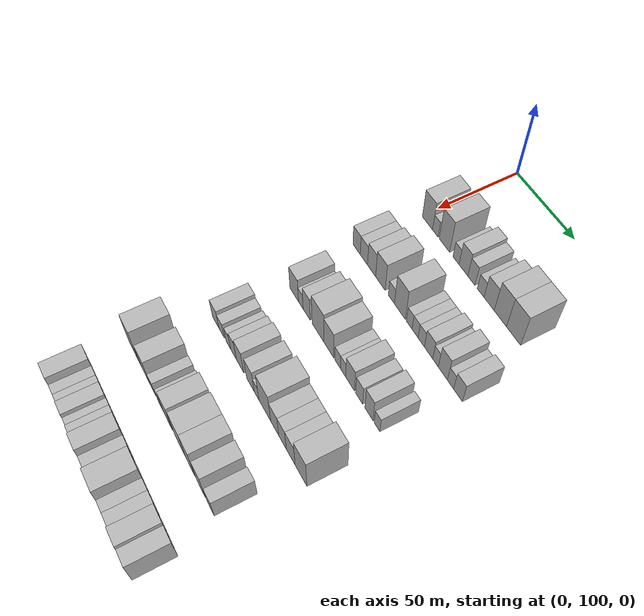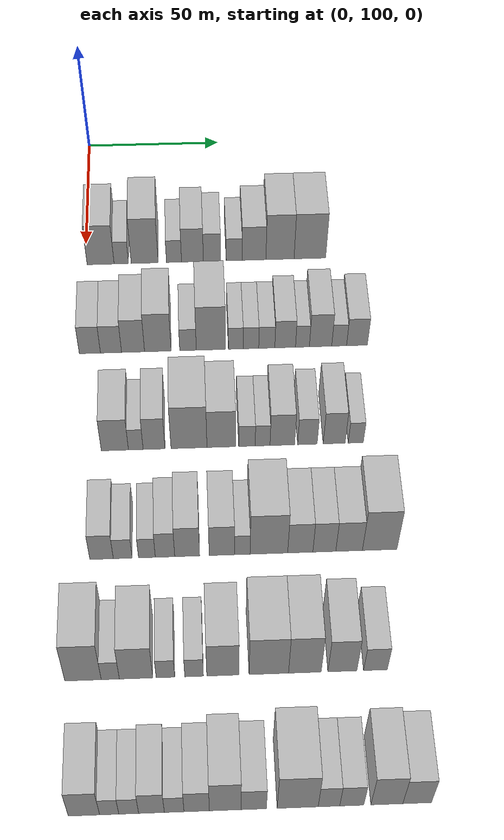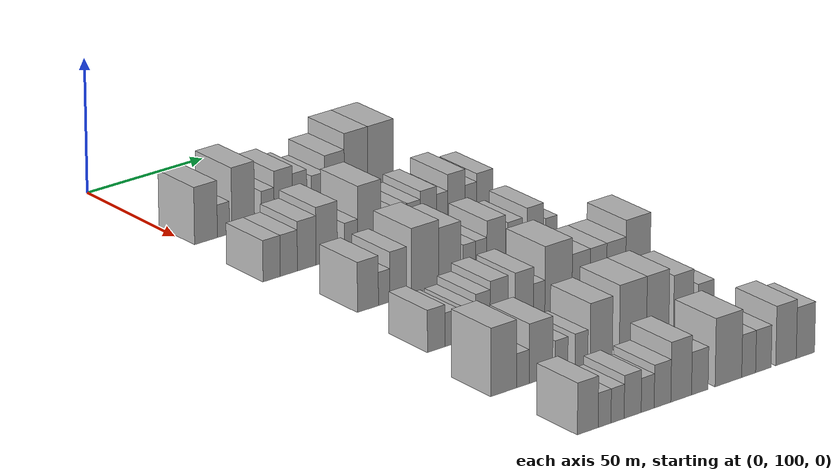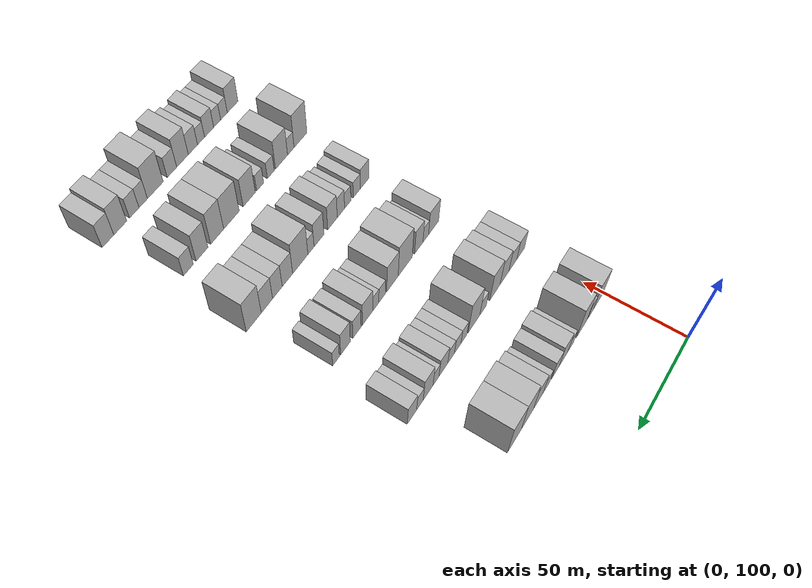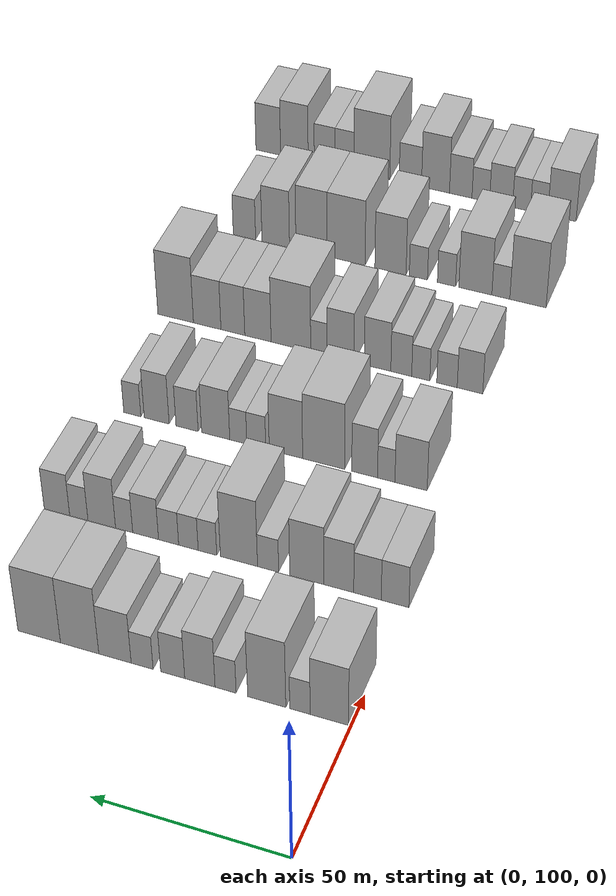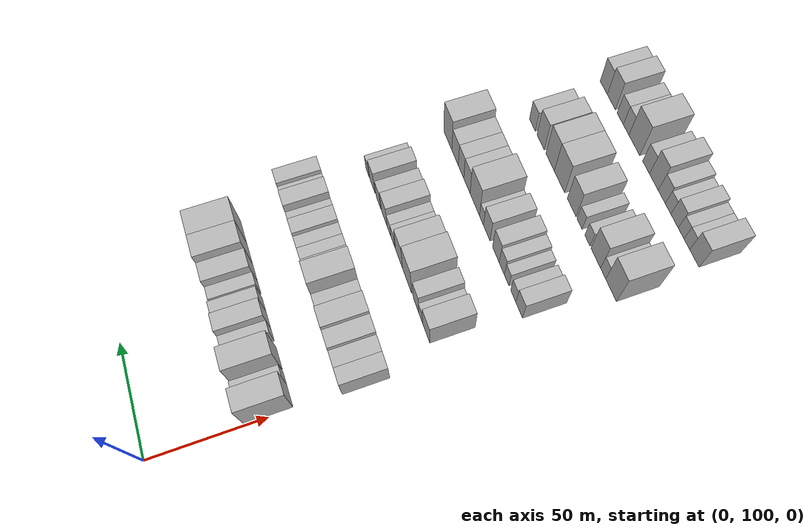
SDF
<sdf version="1.6">
 <world name="default">
  <model name="building_86">
   <static>1</static>
   <pose>50.0000 105.5415 0 0.000000 0.000000 0.000000</pose>
   <link name="link">
    <pose>0 0 10.50 0 0 0</pose>
    <collision name="collision"><geometry><box><size>20.0000 9.7715 21.0000</size></box></geometry></collision>
    <visual name="visual">
     <cast_shadows>0</cast_shadows>
     <geometry><box><size>20.0000 9.7715 21.0000</size></box></geometry>
     <material>
      <script>
       <uri>model://HANNAS_wall/materials/scripts</uri>
       <uri>model://HANNAS_wall/materials/textures</uri>
       <name>vrc/HANNAS_wall</name>
      </script>
     </material>
    </visual>
   </link>
  </model>
  <model name="building_87">
   <static>1</static>
   <pose>50.0000 113.0365 0 0.000000 0.000000 0.000000</pose>
   <link name="link">
    <pose>0 0 6.00 0 0 0</pose>
    <collision name="collision"><geometry><box><size>20.0000 5.2187 12.0000</size></box></geometry></collision>
    <visual name="visual">
     <cast_shadows>0</cast_shadows>
     <geometry><box><size>20.0000 5.2187 12.0000</size></box></geometry>
     <material>
      <script>
       <uri>model://HANNAS_wall/materials/scripts</uri>
       <uri>model://HANNAS_wall/materials/textures</uri>
       <name>vrc/HANNAS_wall</name>
      </script>
     </material>
    </visual>
   </link>
  </model>
  <model name="building_88">
   <static>1</static>
   <pose>50.0000 121.5608 0 0.000000 0.000000 0.000000</pose>
   <link name="link">
    <pose>0 0 12.00 0 0 0</pose>
    <collision name="collision"><geometry><box><size>20.0000 9.8299 24.0000</size></box></geometry></collision>
    <visual name="visual">
     <cast_shadows>0</cast_shadows>
     <geometry><box><size>20.0000 9.8299 24.0000</size></box></geometry>
     <material>
      <script>
       <uri>model://HANNAS_wall/materials/scripts</uri>
       <uri>model://HANNAS_wall/materials/textures</uri>
       <name>vrc/HANNAS_wall</name>
      </script>
     </material>
    </visual>
   </link>
  </model>
  <model name="building_89">
   <static>1</static>
   <pose>50.0000 132.2190 0 0.000000 0.000000 0.000000</pose>
   <link name="link">
    <pose>0 0 6.00 0 0 0</pose>
    <collision name="collision"><geometry><box><size>20.0000 5.4866 12.0000</size></box></geometry></collision>
    <visual name="visual">
     <cast_shadows>0</cast_shadows>
     <geometry><box><size>20.0000 5.4866 12.0000</size></box></geometry>
     <material>
      <script>
       <uri>model://HANNAS_wall/materials/scripts</uri>
       <uri>model://HANNAS_wall/materials/textures</uri>
       <name>vrc/HANNAS_wall</name>
      </script>
     </material>
    </visual>
   </link>
  </model>
  <model name="building_90">
   <static>1</static>
   <pose>50.0000 138.9296 0 0.000000 0.000000 0.000000</pose>
   <link name="link">
    <pose>0 0 9.00 0 0 0</pose>
    <collision name="collision"><geometry><box><size>20.0000 7.9345 18.0000</size></box></geometry></collision>
    <visual name="visual">
     <cast_shadows>0</cast_shadows>
     <geometry><box><size>20.0000 7.9345 18.0000</size></box></geometry>
     <material>
      <script>
       <uri>model://HANNAS_wall/materials/scripts</uri>
       <uri>model://HANNAS_wall/materials/textures</uri>
       <name>vrc/HANNAS_wall</name>
      </script>
     </material>
    </visual>
   </link>
  </model>
  <model name="building_91">
   <static>1</static>
   <pose>50.0000 146.0632 0 0.000000 0.000000 0.000000</pose>
   <link name="link">
    <pose>0 0 7.50 0 0 0</pose>
    <collision name="collision"><geometry><box><size>20.0000 6.3328 15.0000</size></box></geometry></collision>
    <visual name="visual">
     <cast_shadows>0</cast_shadows>
     <geometry><box><size>20.0000 6.3328 15.0000</size></box></geometry>
     <material>
      <script>
       <uri>model://HANNAS_wall/materials/scripts</uri>
       <uri>model://HANNAS_wall/materials/textures</uri>
       <name>vrc/HANNAS_wall</name>
      </script>
     </material>
    </visual>
   </link>
  </model>
  <model name="building_92">
   <static>1</static>
   <pose>50.0000 154.1376 0 0.000000 0.000000 0.000000</pose>
   <link name="link">
    <pose>0 0 6.00 0 0 0</pose>
    <collision name="collision"><geometry><box><size>20.0000 5.8160 12.0000</size></box></geometry></collision>
    <visual name="visual">
     <cast_shadows>0</cast_shadows>
     <geometry><box><size>20.0000 5.8160 12.0000</size></box></geometry>
     <material>
      <script>
       <uri>model://HANNAS_wall/materials/scripts</uri>
       <uri>model://HANNAS_wall/materials/textures</uri>
       <name>vrc/HANNAS_wall</name>
      </script>
     </material>
    </visual>
   </link>
  </model>
  <model name="building_93">
   <static>1</static>
   <pose>50.0000 161.3709 0 0.000000 0.000000 0.000000</pose>
   <link name="link">
    <pose>0 0 9.00 0 0 0</pose>
    <collision name="collision"><geometry><box><size>20.0000 8.6505 18.0000</size></box></geometry></collision>
    <visual name="visual">
     <cast_shadows>0</cast_shadows>
     <geometry><box><size>20.0000 8.6505 18.0000</size></box></geometry>
     <material>
      <script>
       <uri>model://HANNAS_wall/materials/scripts</uri>
       <uri>model://HANNAS_wall/materials/textures</uri>
       <name>vrc/HANNAS_wall</name>
      </script>
     </material>
    </visual>
   </link>
  </model>
  <model name="building_94">
   <static>1</static>
   <pose>50.0000 170.8442 0 0.000000 0.000000 0.000000</pose>
   <link name="link">
    <pose>0 0 12.00 0 0 0</pose>
    <collision name="collision"><geometry><box><size>20.0000 10.2962 24.0000</size></box></geometry></collision>
    <visual name="visual">
     <cast_shadows>0</cast_shadows>
     <geometry><box><size>20.0000 10.2962 24.0000</size></box></geometry>
     <material>
      <script>
       <uri>model://HANNAS_wall/materials/scripts</uri>
       <uri>model://HANNAS_wall/materials/textures</uri>
       <name>vrc/HANNAS_wall</name>
      </script>
     </material>
    </visual>
   </link>
  </model>
  <model name="building_95">
   <static>1</static>
   <pose>50.0000 181.7622 0 0.000000 0.000000 0.000000</pose>
   <link name="link">
    <pose>0 0 12.00 0 0 0</pose>
    <collision name="collision"><geometry><box><size>20.0000 11.5397 24.0000</size></box></geometry></collision>
    <visual name="visual">
     <cast_shadows>0</cast_shadows>
     <geometry><box><size>20.0000 11.5397 24.0000</size></box></geometry>
     <material>
      <script>
       <uri>model://HANNAS_wall/materials/scripts</uri>
       <uri>model://HANNAS_wall/materials/textures</uri>
       <name>vrc/HANNAS_wall</name>
      </script>
     </material>
    </visual>
   </link>
  </model>
  <model name="building_205">
   <static>1</static>
   <pose>90.0000 102.5580 0 0.000000 0.000000 0.000000</pose>
   <link name="link">
    <pose>0 0 7.50 0 0 0</pose>
    <collision name="collision"><geometry><box><size>20.0000 7.3228 15.0000</size></box></geometry></collision>
    <visual name="visual">
     <cast_shadows>0</cast_shadows>
     <geometry><box><size>20.0000 7.3228 15.0000</size></box></geometry>
     <material>
      <script>
       <uri>model://HANNAS_wall/materials/scripts</uri>
       <uri>model://HANNAS_wall/materials/textures</uri>
       <name>vrc/HANNAS_wall</name>
      </script>
     </material>
    </visual>
   </link>
  </model>
  <model name="building_206">
   <static>1</static>
   <pose>90.0000 109.8729 0 0.000000 0.000000 0.000000</pose>
   <link name="link">
    <pose>0 0 7.50 0 0 0</pose>
    <collision name="collision"><geometry><box><size>20.0000 7.3071 15.0000</size></box></geometry></collision>
    <visual name="visual">
     <cast_shadows>0</cast_shadows>
     <geometry><box><size>20.0000 7.3071 15.0000</size></box></geometry>
     <material>
      <script>
       <uri>model://HANNAS_wall/materials/scripts</uri>
       <uri>model://HANNAS_wall/materials/textures</uri>
       <name>vrc/HANNAS_wall</name>
      </script>
     </material>
    </visual>
   </link>
  </model>
  <model name="building_207">
   <static>1</static>
   <pose>90.0000 117.5185 0 0.000000 0.000000 0.000000</pose>
   <link name="link">
    <pose>0 0 9.00 0 0 0</pose>
    <collision name="collision"><geometry><box><size>20.0000 7.9840 18.0000</size></box></geometry></collision>
    <visual name="visual">
     <cast_shadows>0</cast_shadows>
     <geometry><box><size>20.0000 7.9840 18.0000</size></box></geometry>
     <material>
      <script>
       <uri>model://HANNAS_wall/materials/scripts</uri>
       <uri>model://HANNAS_wall/materials/textures</uri>
       <name>vrc/HANNAS_wall</name>
      </script>
     </material>
    </visual>
   </link>
  </model>
  <model name="building_208">
   <static>1</static>
   <pose>90.0000 126.1099 0 0.000000 0.000000 0.000000</pose>
   <link name="link">
    <pose>0 0 10.50 0 0 0</pose>
    <collision name="collision"><geometry><box><size>20.0000 9.1990 21.0000</size></box></geometry></collision>
    <visual name="visual">
     <cast_shadows>0</cast_shadows>
     <geometry><box><size>20.0000 9.1990 21.0000</size></box></geometry>
     <material>
      <script>
       <uri>model://HANNAS_wall/materials/scripts</uri>
       <uri>model://HANNAS_wall/materials/textures</uri>
       <name>vrc/HANNAS_wall</name>
      </script>
     </material>
    </visual>
   </link>
  </model>
  <model name="building_209">
   <static>1</static>
   <pose>90.0000 136.5856 0 0.000000 0.000000 0.000000</pose>
   <link name="link">
    <pose>0 0 6.00 0 0 0</pose>
    <collision name="collision"><geometry><box><size>20.0000 5.7523 12.0000</size></box></geometry></collision>
    <visual name="visual">
     <cast_shadows>0</cast_shadows>
     <geometry><box><size>20.0000 5.7523 12.0000</size></box></geometry>
     <material>
      <script>
       <uri>model://HANNAS_wall/materials/scripts</uri>
       <uri>model://HANNAS_wall/materials/textures</uri>
       <name>vrc/HANNAS_wall</name>
      </script>
     </material>
    </visual>
   </link>
  </model>
  <model name="building_210">
   <static>1</static>
   <pose>90.0000 144.5418 0 0.000000 0.000000 0.000000</pose>
   <link name="link">
    <pose>0 0 12.00 0 0 0</pose>
    <collision name="collision"><geometry><box><size>20.0000 10.1601 24.0000</size></box></geometry></collision>
    <visual name="visual">
     <cast_shadows>0</cast_shadows>
     <geometry><box><size>20.0000 10.1601 24.0000</size></box></geometry>
     <material>
      <script>
       <uri>model://HANNAS_wall/materials/scripts</uri>
       <uri>model://HANNAS_wall/materials/textures</uri>
       <name>vrc/HANNAS_wall</name>
      </script>
     </material>
    </visual>
   </link>
  </model>
  <model name="building_211">
   <static>1</static>
   <pose>90.0000 153.1851 0 0.000000 0.000000 0.000000</pose>
   <link name="link">
    <pose>0 0 6.00 0 0 0</pose>
    <collision name="collision"><geometry><box><size>20.0000 5.1266 12.0000</size></box></geometry></collision>
    <visual name="visual">
     <cast_shadows>0</cast_shadows>
     <geometry><box><size>20.0000 5.1266 12.0000</size></box></geometry>
     <material>
      <script>
       <uri>model://HANNAS_wall/materials/scripts</uri>
       <uri>model://HANNAS_wall/materials/textures</uri>
       <name>vrc/HANNAS_wall</name>
      </script>
     </material>
    </visual>
   </link>
  </model>
  <model name="building_212">
   <static>1</static>
   <pose>90.0000 158.4520 0 0.000000 0.000000 0.000000</pose>
   <link name="link">
    <pose>0 0 6.00 0 0 0</pose>
    <collision name="collision"><geometry><box><size>20.0000 5.4071 12.0000</size></box></geometry></collision>
    <visual name="visual">
     <cast_shadows>0</cast_shadows>
     <geometry><box><size>20.0000 5.4071 12.0000</size></box></geometry>
     <material>
      <script>
       <uri>model://HANNAS_wall/materials/scripts</uri>
       <uri>model://HANNAS_wall/materials/textures</uri>
       <name>vrc/HANNAS_wall</name>
      </script>
     </material>
    </visual>
   </link>
  </model>
  <model name="building_213">
   <static>1</static>
   <pose>90.0000 163.9568 0 0.000000 0.000000 0.000000</pose>
   <link name="link">
    <pose>0 0 6.00 0 0 0</pose>
    <collision name="collision"><geometry><box><size>20.0000 5.6026 12.0000</size></box></geometry></collision>
    <visual name="visual">
     <cast_shadows>0</cast_shadows>
     <geometry><box><size>20.0000 5.6026 12.0000</size></box></geometry>
     <material>
      <script>
       <uri>model://HANNAS_wall/materials/scripts</uri>
       <uri>model://HANNAS_wall/materials/textures</uri>
       <name>vrc/HANNAS_wall</name>
      </script>
     </material>
    </visual>
   </link>
  </model>
  <model name="building_214">
   <static>1</static>
   <pose>90.0000 170.3653 0 0.000000 0.000000 0.000000</pose>
   <link name="link">
    <pose>0 0 7.50 0 0 0</pose>
    <collision name="collision"><geometry><box><size>20.0000 7.2143 15.0000</size></box></geometry></collision>
    <visual name="visual">
     <cast_shadows>0</cast_shadows>
     <geometry><box><size>20.0000 7.2143 15.0000</size></box></geometry>
     <material>
      <script>
       <uri>model://HANNAS_wall/materials/scripts</uri>
       <uri>model://HANNAS_wall/materials/textures</uri>
       <name>vrc/HANNAS_wall</name>
      </script>
     </material>
    </visual>
   </link>
  </model>
  <model name="building_215">
   <static>1</static>
   <pose>90.0000 176.3844 0 0.000000 0.000000 0.000000</pose>
   <link name="link">
    <pose>0 0 6.00 0 0 0</pose>
    <collision name="collision"><geometry><box><size>20.0000 4.8239 12.0000</size></box></geometry></collision>
    <visual name="visual">
     <cast_shadows>0</cast_shadows>
     <geometry><box><size>20.0000 4.8239 12.0000</size></box></geometry>
     <material>
      <script>
       <uri>model://HANNAS_wall/materials/scripts</uri>
       <uri>model://HANNAS_wall/materials/textures</uri>
       <name>vrc/HANNAS_wall</name>
      </script>
     </material>
    </visual>
   </link>
  </model>
  <model name="building_216">
   <static>1</static>
   <pose>90.0000 182.6965 0 0.000000 0.000000 0.000000</pose>
   <link name="link">
    <pose>0 0 9.00 0 0 0</pose>
    <collision name="collision"><geometry><box><size>20.0000 7.8003 18.0000</size></box></geometry></collision>
    <visual name="visual">
     <cast_shadows>0</cast_shadows>
     <geometry><box><size>20.0000 7.8003 18.0000</size></box></geometry>
     <material>
      <script>
       <uri>model://HANNAS_wall/materials/scripts</uri>
       <uri>model://HANNAS_wall/materials/textures</uri>
       <name>vrc/HANNAS_wall</name>
      </script>
     </material>
    </visual>
   </link>
  </model>
  <model name="building_217">
   <static>1</static>
   <pose>90.0000 189.1905 0 0.000000 0.000000 0.000000</pose>
   <link name="link">
    <pose>0 0 6.00 0 0 0</pose>
    <collision name="collision"><geometry><box><size>20.0000 5.1875 12.0000</size></box></geometry></collision>
    <visual name="visual">
     <cast_shadows>0</cast_shadows>
     <geometry><box><size>20.0000 5.1875 12.0000</size></box></geometry>
     <material>
      <script>
       <uri>model://HANNAS_wall/materials/scripts</uri>
       <uri>model://HANNAS_wall/materials/textures</uri>
       <name>vrc/HANNAS_wall</name>
      </script>
     </material>
    </visual>
   </link>
  </model>
  <model name="building_218">
   <static>1</static>
   <pose>90.0000 195.4128 0 0.000000 0.000000 0.000000</pose>
   <link name="link">
    <pose>0 0 7.50 0 0 0</pose>
    <collision name="collision"><geometry><box><size>20.0000 7.2571 15.0000</size></box></geometry></collision>
    <visual name="visual">
     <cast_shadows>0</cast_shadows>
     <geometry><box><size>20.0000 7.2571 15.0000</size></box></geometry>
     <material>
      <script>
       <uri>model://HANNAS_wall/materials/scripts</uri>
       <uri>model://HANNAS_wall/materials/textures</uri>
       <name>vrc/HANNAS_wall</name>
      </script>
     </material>
    </visual>
   </link>
  </model>
  <model name="building_345">
   <static>1</static>
   <pose>130.0000 111.7218 0 0.000000 0.000000 0.000000</pose>
   <link name="link">
    <pose>0 0 9.00 0 0 0</pose>
    <collision name="collision"><geometry><box><size>20.0000 8.9261 18.0000</size></box></geometry></collision>
    <visual name="visual">
     <cast_shadows>0</cast_shadows>
     <geometry><box><size>20.0000 8.9261 18.0000</size></box></geometry>
     <material>
      <script>
       <uri>model://HANNAS_wall/materials/scripts</uri>
       <uri>model://HANNAS_wall/materials/textures</uri>
       <name>vrc/HANNAS_wall</name>
      </script>
     </material>
    </visual>
   </link>
  </model>
  <model name="building_346">
   <static>1</static>
   <pose>130.0000 118.6099 0 0.000000 0.000000 0.000000</pose>
   <link name="link">
    <pose>0 0 6.00 0 0 0</pose>
    <collision name="collision"><geometry><box><size>20.0000 4.8501 12.0000</size></box></geometry></collision>
    <visual name="visual">
     <cast_shadows>0</cast_shadows>
     <geometry><box><size>20.0000 4.8501 12.0000</size></box></geometry>
     <material>
      <script>
       <uri>model://HANNAS_wall/materials/scripts</uri>
       <uri>model://HANNAS_wall/materials/textures</uri>
       <name>vrc/HANNAS_wall</name>
      </script>
     </material>
    </visual>
   </link>
  </model>
  <model name="building_347">
   <static>1</static>
   <pose>130.0000 124.6381 0 0.000000 0.000000 0.000000</pose>
   <link name="link">
    <pose>0 0 9.00 0 0 0</pose>
    <collision name="collision"><geometry><box><size>20.0000 7.2063 18.0000</size></box></geometry></collision>
    <visual name="visual">
     <cast_shadows>0</cast_shadows>
     <geometry><box><size>20.0000 7.2063 18.0000</size></box></geometry>
     <material>
      <script>
       <uri>model://HANNAS_wall/materials/scripts</uri>
       <uri>model://HANNAS_wall/materials/textures</uri>
       <name>vrc/HANNAS_wall</name>
      </script>
     </material>
    </visual>
   </link>
  </model>
  <model name="building_348">
   <static>1</static>
   <pose>130.0000 136.1769 0 0.000000 0.000000 0.000000</pose>
   <link name="link">
    <pose>0 0 12.00 0 0 0</pose>
    <collision name="collision"><geometry><box><size>20.0000 11.8715 24.0000</size></box></geometry></collision>
    <visual name="visual">
     <cast_shadows>0</cast_shadows>
     <geometry><box><size>20.0000 11.8715 24.0000</size></box></geometry>
     <material>
      <script>
       <uri>model://HANNAS_wall/materials/scripts</uri>
       <uri>model://HANNAS_wall/materials/textures</uri>
       <name>vrc/HANNAS_wall</name>
      </script>
     </material>
    </visual>
   </link>
  </model>
  <model name="building_349">
   <static>1</static>
   <pose>130.0000 146.8684 0 0.000000 0.000000 0.000000</pose>
   <link name="link">
    <pose>0 0 10.50 0 0 0</pose>
    <collision name="collision"><geometry><box><size>20.0000 9.5114 21.0000</size></box></geometry></collision>
    <visual name="visual">
     <cast_shadows>0</cast_shadows>
     <geometry><box><size>20.0000 9.5114 21.0000</size></box></geometry>
     <material>
      <script>
       <uri>model://HANNAS_wall/materials/scripts</uri>
       <uri>model://HANNAS_wall/materials/textures</uri>
       <name>vrc/HANNAS_wall</name>
      </script>
     </material>
    </visual>
   </link>
  </model>
  <model name="building_350">
   <static>1</static>
   <pose>130.0000 155.3452 0 0.000000 0.000000 0.000000</pose>
   <link name="link">
    <pose>0 0 6.00 0 0 0</pose>
    <collision name="collision"><geometry><box><size>20.0000 5.4422 12.0000</size></box></geometry></collision>
    <visual name="visual">
     <cast_shadows>0</cast_shadows>
     <geometry><box><size>20.0000 5.4422 12.0000</size></box></geometry>
     <material>
      <script>
       <uri>model://HANNAS_wall/materials/scripts</uri>
       <uri>model://HANNAS_wall/materials/textures</uri>
       <name>vrc/HANNAS_wall</name>
      </script>
     </material>
    </visual>
   </link>
  </model>
  <model name="building_351">
   <static>1</static>
   <pose>130.0000 160.5238 0 0.000000 0.000000 0.000000</pose>
   <link name="link">
    <pose>0 0 6.00 0 0 0</pose>
    <collision name="collision"><geometry><box><size>20.0000 4.9150 12.0000</size></box></geometry></collision>
    <visual name="visual">
     <cast_shadows>0</cast_shadows>
     <geometry><box><size>20.0000 4.9150 12.0000</size></box></geometry>
     <material>
      <script>
       <uri>model://HANNAS_wall/materials/scripts</uri>
       <uri>model://HANNAS_wall/materials/textures</uri>
       <name>vrc/HANNAS_wall</name>
      </script>
     </material>
    </visual>
   </link>
  </model>
  <model name="building_352">
   <static>1</static>
   <pose>130.0000 167.0611 0 0.000000 0.000000 0.000000</pose>
   <link name="link">
    <pose>0 0 9.00 0 0 0</pose>
    <collision name="collision"><geometry><box><size>20.0000 8.1597 18.0000</size></box></geometry></collision>
    <visual name="visual">
     <cast_shadows>0</cast_shadows>
     <geometry><box><size>20.0000 8.1597 18.0000</size></box></geometry>
     <material>
      <script>
       <uri>model://HANNAS_wall/materials/scripts</uri>
       <uri>model://HANNAS_wall/materials/textures</uri>
       <name>vrc/HANNAS_wall</name>
      </script>
     </material>
    </visual>
   </link>
  </model>
  <model name="building_353">
   <static>1</static>
   <pose>130.0000 175.3699 0 0.000000 0.000000 0.000000</pose>
   <link name="link">
    <pose>0 0 7.50 0 0 0</pose>
    <collision name="collision"><geometry><box><size>20.0000 6.4578 15.0000</size></box></geometry></collision>
    <visual name="visual">
     <cast_shadows>0</cast_shadows>
     <geometry><box><size>20.0000 6.4578 15.0000</size></box></geometry>
     <material>
      <script>
       <uri>model://HANNAS_wall/materials/scripts</uri>
       <uri>model://HANNAS_wall/materials/textures</uri>
       <name>vrc/HANNAS_wall</name>
      </script>
     </material>
    </visual>
   </link>
  </model>
  <model name="building_354">
   <static>1</static>
   <pose>130.0000 184.2520 0 0.000000 0.000000 0.000000</pose>
   <link name="link">
    <pose>0 0 9.00 0 0 0</pose>
    <collision name="collision"><geometry><box><size>20.0000 7.3066 18.0000</size></box></geometry></collision>
    <visual name="visual">
     <cast_shadows>0</cast_shadows>
     <geometry><box><size>20.0000 7.3066 18.0000</size></box></geometry>
     <material>
      <script>
       <uri>model://HANNAS_wall/materials/scripts</uri>
       <uri>model://HANNAS_wall/materials/textures</uri>
       <name>vrc/HANNAS_wall</name>
      </script>
     </material>
    </visual>
   </link>
  </model>
  <model name="building_355">
   <static>1</static>
   <pose>130.0000 191.4180 0 0.000000 0.000000 0.000000</pose>
   <link name="link">
    <pose>0 0 6.00 0 0 0</pose>
    <collision name="collision"><geometry><box><size>20.0000 5.0254 12.0000</size></box></geometry></collision>
    <visual name="visual">
     <cast_shadows>0</cast_shadows>
     <geometry><box><size>20.0000 5.0254 12.0000</size></box></geometry>
     <material>
      <script>
       <uri>model://HANNAS_wall/materials/scripts</uri>
       <uri>model://HANNAS_wall/materials/textures</uri>
       <name>vrc/HANNAS_wall</name>
      </script>
     </material>
    </visual>
   </link>
  </model>
  <model name="building_485">
   <static>1</static>
   <pose>170.0000 108.0670 0 0.000000 0.000000 0.000000</pose>
   <link name="link">
    <pose>0 0 7.50 0 0 0</pose>
    <collision name="collision"><geometry><box><size>20.0000 7.3417 15.0000</size></box></geometry></collision>
    <visual name="visual">
     <cast_shadows>0</cast_shadows>
     <geometry><box><size>20.0000 7.3417 15.0000</size></box></geometry>
     <material>
      <script>
       <uri>model://HANNAS_wall/materials/scripts</uri>
       <uri>model://HANNAS_wall/materials/textures</uri>
       <name>vrc/HANNAS_wall</name>
      </script>
     </material>
    </visual>
   </link>
  </model>
  <model name="building_486">
   <static>1</static>
   <pose>170.0000 114.6847 0 0.000000 0.000000 0.000000</pose>
   <link name="link">
    <pose>0 0 6.00 0 0 0</pose>
    <collision name="collision"><geometry><box><size>20.0000 5.8937 12.0000</size></box></geometry></collision>
    <visual name="visual">
     <cast_shadows>0</cast_shadows>
     <geometry><box><size>20.0000 5.8937 12.0000</size></box></geometry>
     <material>
      <script>
       <uri>model://HANNAS_wall/materials/scripts</uri>
       <uri>model://HANNAS_wall/materials/textures</uri>
       <name>vrc/HANNAS_wall</name>
      </script>
     </material>
    </visual>
   </link>
  </model>
  <model name="building_487">
   <static>1</static>
   <pose>170.0000 122.2639 0 0.000000 0.000000 0.000000</pose>
   <link name="link">
    <pose>0 0 6.00 0 0 0</pose>
    <collision name="collision"><geometry><box><size>20.0000 5.2646 12.0000</size></box></geometry></collision>
    <visual name="visual">
     <cast_shadows>0</cast_shadows>
     <geometry><box><size>20.0000 5.2646 12.0000</size></box></geometry>
     <material>
      <script>
       <uri>model://HANNAS_wall/materials/scripts</uri>
       <uri>model://HANNAS_wall/materials/textures</uri>
       <name>vrc/HANNAS_wall</name>
      </script>
     </material>
    </visual>
   </link>
  </model>
  <model name="building_488">
   <static>1</static>
   <pose>170.0000 127.9391 0 0.000000 0.000000 0.000000</pose>
   <link name="link">
    <pose>0 0 7.50 0 0 0</pose>
    <collision name="collision"><geometry><box><size>20.0000 6.0857 15.0000</size></box></geometry></collision>
    <visual name="visual">
     <cast_shadows>0</cast_shadows>
     <geometry><box><size>20.0000 6.0857 15.0000</size></box></geometry>
     <material>
      <script>
       <uri>model://HANNAS_wall/materials/scripts</uri>
       <uri>model://HANNAS_wall/materials/textures</uri>
       <name>vrc/HANNAS_wall</name>
      </script>
     </material>
    </visual>
   </link>
  </model>
  <model name="building_489">
   <static>1</static>
   <pose>170.0000 134.8782 0 0.000000 0.000000 0.000000</pose>
   <link name="link">
    <pose>0 0 9.00 0 0 0</pose>
    <collision name="collision"><geometry><box><size>20.0000 7.7925 18.0000</size></box></geometry></collision>
    <visual name="visual">
     <cast_shadows>0</cast_shadows>
     <geometry><box><size>20.0000 7.7925 18.0000</size></box></geometry>
     <material>
      <script>
       <uri>model://HANNAS_wall/materials/scripts</uri>
       <uri>model://HANNAS_wall/materials/textures</uri>
       <name>vrc/HANNAS_wall</name>
      </script>
     </material>
    </visual>
   </link>
  </model>
  <model name="building_490">
   <static>1</static>
   <pose>170.0000 145.7519 0 0.000000 0.000000 0.000000</pose>
   <link name="link">
    <pose>0 0 9.00 0 0 0</pose>
    <collision name="collision"><geometry><box><size>20.0000 7.9550 18.0000</size></box></geometry></collision>
    <visual name="visual">
     <cast_shadows>0</cast_shadows>
     <geometry><box><size>20.0000 7.9550 18.0000</size></box></geometry>
     <material>
      <script>
       <uri>model://HANNAS_wall/materials/scripts</uri>
       <uri>model://HANNAS_wall/materials/textures</uri>
       <name>vrc/HANNAS_wall</name>
      </script>
     </material>
    </visual>
   </link>
  </model>
  <model name="building_491">
   <static>1</static>
   <pose>170.0000 152.1671 0 0.000000 0.000000 0.000000</pose>
   <link name="link">
    <pose>0 0 6.00 0 0 0</pose>
    <collision name="collision"><geometry><box><size>20.0000 4.8753 12.0000</size></box></geometry></collision>
    <visual name="visual">
     <cast_shadows>0</cast_shadows>
     <geometry><box><size>20.0000 4.8753 12.0000</size></box></geometry>
     <material>
      <script>
       <uri>model://HANNAS_wall/materials/scripts</uri>
       <uri>model://HANNAS_wall/materials/textures</uri>
       <name>vrc/HANNAS_wall</name>
      </script>
     </material>
    </visual>
   </link>
  </model>
  <model name="building_492">
   <static>1</static>
   <pose>170.0000 160.5174 0 0.000000 0.000000 0.000000</pose>
   <link name="link">
    <pose>0 0 12.00 0 0 0</pose>
    <collision name="collision"><geometry><box><size>20.0000 11.8253 24.0000</size></box></geometry></collision>
    <visual name="visual">
     <cast_shadows>0</cast_shadows>
     <geometry><box><size>20.0000 11.8253 24.0000</size></box></geometry>
     <material>
      <script>
       <uri>model://HANNAS_wall/materials/scripts</uri>
       <uri>model://HANNAS_wall/materials/textures</uri>
       <name>vrc/HANNAS_wall</name>
      </script>
     </material>
    </visual>
   </link>
  </model>
  <model name="building_493">
   <static>1</static>
   <pose>170.0000 170.3884 0 0.000000 0.000000 0.000000</pose>
   <link name="link">
    <pose>0 0 9.00 0 0 0</pose>
    <collision name="collision"><geometry><box><size>20.0000 7.9168 18.0000</size></box></geometry></collision>
    <visual name="visual">
     <cast_shadows>0</cast_shadows>
     <geometry><box><size>20.0000 7.9168 18.0000</size></box></geometry>
     <material>
      <script>
       <uri>model://HANNAS_wall/materials/scripts</uri>
       <uri>model://HANNAS_wall/materials/textures</uri>
       <name>vrc/HANNAS_wall</name>
      </script>
     </material>
    </visual>
   </link>
  </model>
  <model name="building_494">
   <static>1</static>
   <pose>170.0000 177.9589 0 0.000000 0.000000 0.000000</pose>
   <link name="link">
    <pose>0 0 9.00 0 0 0</pose>
    <collision name="collision"><geometry><box><size>20.0000 7.2242 18.0000</size></box></geometry></collision>
    <visual name="visual">
     <cast_shadows>0</cast_shadows>
     <geometry><box><size>20.0000 7.2242 18.0000</size></box></geometry>
     <material>
      <script>
       <uri>model://HANNAS_wall/materials/scripts</uri>
       <uri>model://HANNAS_wall/materials/textures</uri>
       <name>vrc/HANNAS_wall</name>
      </script>
     </material>
    </visual>
   </link>
  </model>
  <model name="building_495">
   <static>1</static>
   <pose>170.0000 185.7589 0 0.000000 0.000000 0.000000</pose>
   <link name="link">
    <pose>0 0 9.00 0 0 0</pose>
    <collision name="collision"><geometry><box><size>20.0000 8.3758 18.0000</size></box></geometry></collision>
    <visual name="visual">
     <cast_shadows>0</cast_shadows>
     <geometry><box><size>20.0000 8.3758 18.0000</size></box></geometry>
     <material>
      <script>
       <uri>model://HANNAS_wall/materials/scripts</uri>
       <uri>model://HANNAS_wall/materials/textures</uri>
       <name>vrc/HANNAS_wall</name>
      </script>
     </material>
    </visual>
   </link>
  </model>
  <model name="building_496">
   <static>1</static>
   <pose>170.0000 195.3925 0 0.000000 0.000000 0.000000</pose>
   <link name="link">
    <pose>0 0 12.00 0 0 0</pose>
    <collision name="collision"><geometry><box><size>20.0000 10.8915 24.0000</size></box></geometry></collision>
    <visual name="visual">
     <cast_shadows>0</cast_shadows>
     <geometry><box><size>20.0000 10.8915 24.0000</size></box></geometry>
     <material>
      <script>
       <uri>model://HANNAS_wall/materials/scripts</uri>
       <uri>model://HANNAS_wall/materials/textures</uri>
       <name>vrc/HANNAS_wall</name>
      </script>
     </material>
    </visual>
   </link>
  </model>
  <model name="building_629">
   <static>1</static>
   <pose>210.0000 103.3170 0 0.000000 0.000000 0.000000</pose>
   <link name="link">
    <pose>0 0 12.00 0 0 0</pose>
    <collision name="collision"><geometry><box><size>20.0000 10.7640 24.0000</size></box></geometry></collision>
    <visual name="visual">
     <cast_shadows>0</cast_shadows>
     <geometry><box><size>20.0000 10.7640 24.0000</size></box></geometry>
     <material>
      <script>
       <uri>model://HANNAS_wall/materials/scripts</uri>
       <uri>model://HANNAS_wall/materials/textures</uri>
       <name>vrc/HANNAS_wall</name>
      </script>
     </material>
    </visual>
   </link>
  </model>
  <model name="building_630">
   <static>1</static>
   <pose>210.0000 111.3814 0 0.000000 0.000000 0.000000</pose>
   <link name="link">
    <pose>0 0 6.00 0 0 0</pose>
    <collision name="collision"><geometry><box><size>20.0000 5.3647 12.0000</size></box></geometry></collision>
    <visual name="visual">
     <cast_shadows>0</cast_shadows>
     <geometry><box><size>20.0000 5.3647 12.0000</size></box></geometry>
     <material>
      <script>
       <uri>model://HANNAS_wall/materials/scripts</uri>
       <uri>model://HANNAS_wall/materials/textures</uri>
       <name>vrc/HANNAS_wall</name>
      </script>
     </material>
    </visual>
   </link>
  </model>
  <model name="building_631">
   <static>1</static>
   <pose>210.0000 119.0135 0 0.000000 0.000000 0.000000</pose>
   <link name="link">
    <pose>0 0 10.50 0 0 0</pose>
    <collision name="collision"><geometry><box><size>20.0000 9.8997 21.0000</size></box></geometry></collision>
    <visual name="visual">
     <cast_shadows>0</cast_shadows>
     <geometry><box><size>20.0000 9.8997 21.0000</size></box></geometry>
     <material>
      <script>
       <uri>model://HANNAS_wall/materials/scripts</uri>
       <uri>model://HANNAS_wall/materials/textures</uri>
       <name>vrc/HANNAS_wall</name>
      </script>
     </material>
    </visual>
   </link>
  </model>
  <model name="building_632">
   <static>1</static>
   <pose>210.0000 127.7109 0 0.000000 0.000000 0.000000</pose>
   <link name="link">
    <pose>0 0 6.00 0 0 0</pose>
    <collision name="collision"><geometry><box><size>20.0000 5.4950 12.0000</size></box></geometry></collision>
    <visual name="visual">
     <cast_shadows>0</cast_shadows>
     <geometry><box><size>20.0000 5.4950 12.0000</size></box></geometry>
     <material>
      <script>
       <uri>model://HANNAS_wall/materials/scripts</uri>
       <uri>model://HANNAS_wall/materials/textures</uri>
       <name>vrc/HANNAS_wall</name>
      </script>
     </material>
    </visual>
   </link>
  </model>
  <model name="building_633">
   <static>1</static>
   <pose>210.0000 136.2202 0 0.000000 0.000000 0.000000</pose>
   <link name="link">
    <pose>0 0 6.00 0 0 0</pose>
    <collision name="collision"><geometry><box><size>20.0000 5.5236 12.0000</size></box></geometry></collision>
    <visual name="visual">
     <cast_shadows>0</cast_shadows>
     <geometry><box><size>20.0000 5.5236 12.0000</size></box></geometry>
     <material>
      <script>
       <uri>model://HANNAS_wall/materials/scripts</uri>
       <uri>model://HANNAS_wall/materials/textures</uri>
       <name>vrc/HANNAS_wall</name>
      </script>
     </material>
    </visual>
   </link>
  </model>
  <model name="building_634">
   <static>1</static>
   <pose>210.0000 144.7569 0 0.000000 0.000000 0.000000</pose>
   <link name="link">
    <pose>0 0 10.50 0 0 0</pose>
    <collision name="collision"><geometry><box><size>20.0000 9.5498 21.0000</size></box></geometry></collision>
    <visual name="visual">
     <cast_shadows>0</cast_shadows>
     <geometry><box><size>20.0000 9.5498 21.0000</size></box></geometry>
     <material>
      <script>
       <uri>model://HANNAS_wall/materials/scripts</uri>
       <uri>model://HANNAS_wall/materials/textures</uri>
       <name>vrc/HANNAS_wall</name>
      </script>
     </material>
    </visual>
   </link>
  </model>
  <model name="building_635">
   <static>1</static>
   <pose>210.0000 158.4002 0 0.000000 0.000000 0.000000</pose>
   <link name="link">
    <pose>0 0 12.00 0 0 0</pose>
    <collision name="collision"><geometry><box><size>20.0000 11.7368 24.0000</size></box></geometry></collision>
    <visual name="visual">
     <cast_shadows>0</cast_shadows>
     <geometry><box><size>20.0000 11.7368 24.0000</size></box></geometry>
     <material>
      <script>
       <uri>model://HANNAS_wall/materials/scripts</uri>
       <uri>model://HANNAS_wall/materials/textures</uri>
       <name>vrc/HANNAS_wall</name>
      </script>
     </material>
    </visual>
   </link>
  </model>
  <model name="building_636">
   <static>1</static>
   <pose>210.0000 169.1255 0 0.000000 0.000000 0.000000</pose>
   <link name="link">
    <pose>0 0 12.00 0 0 0</pose>
    <collision name="collision"><geometry><box><size>20.0000 9.7137 24.0000</size></box></geometry></collision>
    <visual name="visual">
     <cast_shadows>0</cast_shadows>
     <geometry><box><size>20.0000 9.7137 24.0000</size></box></geometry>
     <material>
      <script>
       <uri>model://HANNAS_wall/materials/scripts</uri>
       <uri>model://HANNAS_wall/materials/textures</uri>
       <name>vrc/HANNAS_wall</name>
      </script>
     </material>
    </visual>
   </link>
  </model>
  <model name="building_637">
   <static>1</static>
   <pose>210.0000 180.3054 0 0.000000 0.000000 0.000000</pose>
   <link name="link">
    <pose>0 0 10.50 0 0 0</pose>
    <collision name="collision"><geometry><box><size>20.0000 8.6462 21.0000</size></box></geometry></collision>
    <visual name="visual">
     <cast_shadows>0</cast_shadows>
     <geometry><box><size>20.0000 8.6462 21.0000</size></box></geometry>
     <material>
      <script>
       <uri>model://HANNAS_wall/materials/scripts</uri>
       <uri>model://HANNAS_wall/materials/textures</uri>
       <name>vrc/HANNAS_wall</name>
      </script>
     </material>
    </visual>
   </link>
  </model>
  <model name="building_638">
   <static>1</static>
   <pose>210.0000 190.1642 0 0.000000 0.000000 0.000000</pose>
   <link name="link">
    <pose>0 0 7.50 0 0 0</pose>
    <collision name="collision"><geometry><box><size>20.0000 7.0712 15.0000</size></box></geometry></collision>
    <visual name="visual">
     <cast_shadows>0</cast_shadows>
     <geometry><box><size>20.0000 7.0712 15.0000</size></box></geometry>
     <material>
      <script>
       <uri>model://HANNAS_wall/materials/scripts</uri>
       <uri>model://HANNAS_wall/materials/textures</uri>
       <name>vrc/HANNAS_wall</name>
      </script>
     </material>
    </visual>
   </link>
  </model>
  <model name="building_771">
   <static>1</static>
   <pose>250.0000 104.6118 0 0.000000 0.000000 0.000000</pose>
   <link name="link">
    <pose>0 0 9.00 0 0 0</pose>
    <collision name="collision"><geometry><box><size>20.0000 8.7330 18.0000</size></box></geometry></collision>
    <visual name="visual">
     <cast_shadows>0</cast_shadows>
     <geometry><box><size>20.0000 8.7330 18.0000</size></box></geometry>
     <material>
      <script>
       <uri>model://HANNAS_wall/materials/scripts</uri>
       <uri>model://HANNAS_wall/materials/textures</uri>
       <name>vrc/HANNAS_wall</name>
      </script>
     </material>
    </visual>
   </link>
  </model>
  <model name="building_772">
   <static>1</static>
   <pose>250.0000 111.6618 0 0.000000 0.000000 0.000000</pose>
   <link name="link">
    <pose>0 0 6.00 0 0 0</pose>
    <collision name="collision"><geometry><box><size>20.0000 5.3669 12.0000</size></box></geometry></collision>
    <visual name="visual">
     <cast_shadows>0</cast_shadows>
     <geometry><box><size>20.0000 5.3669 12.0000</size></box></geometry>
     <material>
      <script>
       <uri>model://HANNAS_wall/materials/scripts</uri>
       <uri>model://HANNAS_wall/materials/textures</uri>
       <name>vrc/HANNAS_wall</name>
      </script>
     </material>
    </visual>
   </link>
  </model>
  <model name="building_773">
   <static>1</static>
   <pose>250.0000 117.1075 0 0.000000 0.000000 0.000000</pose>
   <link name="link">
    <pose>0 0 6.00 0 0 0</pose>
    <collision name="collision"><geometry><box><size>20.0000 5.5246 12.0000</size></box></geometry></collision>
    <visual name="visual">
     <cast_shadows>0</cast_shadows>
     <geometry><box><size>20.0000 5.5246 12.0000</size></box></geometry>
     <material>
      <script>
       <uri>model://HANNAS_wall/materials/scripts</uri>
       <uri>model://HANNAS_wall/materials/textures</uri>
       <name>vrc/HANNAS_wall</name>
      </script>
     </material>
    </visual>
   </link>
  </model>
  <model name="building_774">
   <static>1</static>
   <pose>250.0000 123.4679 0 0.000000 0.000000 0.000000</pose>
   <link name="link">
    <pose>0 0 7.50 0 0 0</pose>
    <collision name="collision"><geometry><box><size>20.0000 7.1961 15.0000</size></box></geometry></collision>
    <visual name="visual">
     <cast_shadows>0</cast_shadows>
     <geometry><box><size>20.0000 7.1961 15.0000</size></box></geometry>
     <material>
      <script>
       <uri>model://HANNAS_wall/materials/scripts</uri>
       <uri>model://HANNAS_wall/materials/textures</uri>
       <name>vrc/HANNAS_wall</name>
      </script>
     </material>
    </visual>
   </link>
  </model>
  <model name="building_775">
   <static>1</static>
   <pose>250.0000 129.8162 0 0.000000 0.000000 0.000000</pose>
   <link name="link">
    <pose>0 0 6.00 0 0 0</pose>
    <collision name="collision"><geometry><box><size>20.0000 5.5005 12.0000</size></box></geometry></collision>
    <visual name="visual">
     <cast_shadows>0</cast_shadows>
     <geometry><box><size>20.0000 5.5005 12.0000</size></box></geometry>
     <material>
      <script>
       <uri>model://HANNAS_wall/materials/scripts</uri>
       <uri>model://HANNAS_wall/materials/textures</uri>
       <name>vrc/HANNAS_wall</name>
      </script>
     </material>
    </visual>
   </link>
  </model>
  <model name="building_776">
   <static>1</static>
   <pose>250.0000 136.1147 0 0.000000 0.000000 0.000000</pose>
   <link name="link">
    <pose>0 0 7.50 0 0 0</pose>
    <collision name="collision"><geometry><box><size>20.0000 7.0965 15.0000</size></box></geometry></collision>
    <visual name="visual">
     <cast_shadows>0</cast_shadows>
     <geometry><box><size>20.0000 7.0965 15.0000</size></box></geometry>
     <material>
      <script>
       <uri>model://HANNAS_wall/materials/scripts</uri>
       <uri>model://HANNAS_wall/materials/textures</uri>
       <name>vrc/HANNAS_wall</name>
      </script>
     </material>
    </visual>
   </link>
  </model>
  <model name="building_777">
   <static>1</static>
   <pose>250.0000 144.0948 0 0.000000 0.000000 0.000000</pose>
   <link name="link">
    <pose>0 0 10.50 0 0 0</pose>
    <collision name="collision"><geometry><box><size>20.0000 8.8637 21.0000</size></box></geometry></collision>
    <visual name="visual">
     <cast_shadows>0</cast_shadows>
     <geometry><box><size>20.0000 8.8637 21.0000</size></box></geometry>
     <material>
      <script>
       <uri>model://HANNAS_wall/materials/scripts</uri>
       <uri>model://HANNAS_wall/materials/textures</uri>
       <name>vrc/HANNAS_wall</name>
      </script>
     </material>
    </visual>
   </link>
  </model>
  <model name="building_778">
   <static>1</static>
   <pose>250.0000 152.0812 0 0.000000 0.000000 0.000000</pose>
   <link name="link">
    <pose>0 0 7.50 0 0 0</pose>
    <collision name="collision"><geometry><box><size>20.0000 7.1093 15.0000</size></box></geometry></collision>
    <visual name="visual">
     <cast_shadows>0</cast_shadows>
     <geometry><box><size>20.0000 7.1093 15.0000</size></box></geometry>
     <material>
      <script>
       <uri>model://HANNAS_wall/materials/scripts</uri>
       <uri>model://HANNAS_wall/materials/textures</uri>
       <name>vrc/HANNAS_wall</name>
      </script>
     </material>
    </visual>
   </link>
  </model>
  <model name="building_779">
   <static>1</static>
   <pose>250.0000 164.4019 0 0.000000 0.000000 0.000000</pose>
   <link name="link">
    <pose>0 0 12.00 0 0 0</pose>
    <collision name="collision"><geometry><box><size>20.0000 11.5321 24.0000</size></box></geometry></collision>
    <visual name="visual">
     <cast_shadows>0</cast_shadows>
     <geometry><box><size>20.0000 11.5321 24.0000</size></box></geometry>
     <material>
      <script>
       <uri>model://HANNAS_wall/materials/scripts</uri>
       <uri>model://HANNAS_wall/materials/textures</uri>
       <name>vrc/HANNAS_wall</name>
      </script>
     </material>
    </visual>
   </link>
  </model>
  <model name="building_780">
   <static>1</static>
   <pose>250.0000 173.1935 0 0.000000 0.000000 0.000000</pose>
   <link name="link">
    <pose>0 0 7.50 0 0 0</pose>
    <collision name="collision"><geometry><box><size>20.0000 6.0510 15.0000</size></box></geometry></collision>
    <visual name="visual">
     <cast_shadows>0</cast_shadows>
     <geometry><box><size>20.0000 6.0510 15.0000</size></box></geometry>
     <material>
      <script>
       <uri>model://HANNAS_wall/materials/scripts</uri>
       <uri>model://HANNAS_wall/materials/textures</uri>
       <name>vrc/HANNAS_wall</name>
      </script>
     </material>
    </visual>
   </link>
  </model>
  <model name="building_781">
   <static>1</static>
   <pose>250.0000 179.5989 0 0.000000 0.000000 0.000000</pose>
   <link name="link">
    <pose>0 0 7.50 0 0 0</pose>
    <collision name="collision"><geometry><box><size>20.0000 6.7600 15.0000</size></box></geometry></collision>
    <visual name="visual">
     <cast_shadows>0</cast_shadows>
     <geometry><box><size>20.0000 6.7600 15.0000</size></box></geometry>
     <material>
      <script>
       <uri>model://HANNAS_wall/materials/scripts</uri>
       <uri>model://HANNAS_wall/materials/textures</uri>
       <name>vrc/HANNAS_wall</name>
      </script>
     </material>
    </visual>
   </link>
  </model>
  <model name="building_782">
   <static>1</static>
   <pose>250.0000 189.4815 0 0.000000 0.000000 0.000000</pose>
   <link name="link">
    <pose>0 0 10.50 0 0 0</pose>
    <collision name="collision"><geometry><box><size>20.0000 9.0053 21.0000</size></box></geometry></collision>
    <visual name="visual">
     <cast_shadows>0</cast_shadows>
     <geometry><box><size>20.0000 9.0053 21.0000</size></box></geometry>
     <material>
      <script>
       <uri>model://HANNAS_wall/materials/scripts</uri>
       <uri>model://HANNAS_wall/materials/textures</uri>
       <name>vrc/HANNAS_wall</name>
      </script>
     </material>
    </visual>
   </link>
  </model>
  <model name="building_783">
   <static>1</static>
   <pose>250.0000 198.0226 0 0.000000 0.000000 0.000000</pose>
   <link name="link">
    <pose>0 0 9.00 0 0 0</pose>
    <collision name="collision"><geometry><box><size>20.0000 8.0768 18.0000</size></box></geometry></collision>
    <visual name="visual">
     <cast_shadows>0</cast_shadows>
     <geometry><box><size>20.0000 8.0768 18.0000</size></box></geometry>
     <material>
      <script>
       <uri>model://HANNAS_wall/materials/scripts</uri>
       <uri>model://HANNAS_wall/materials/textures</uri>
       <name>vrc/HANNAS_wall</name>
      </script>
     </material>
    </visual>
   </link>
  </model>
 </world>
</sdf>
